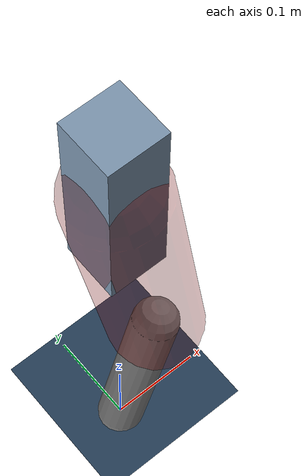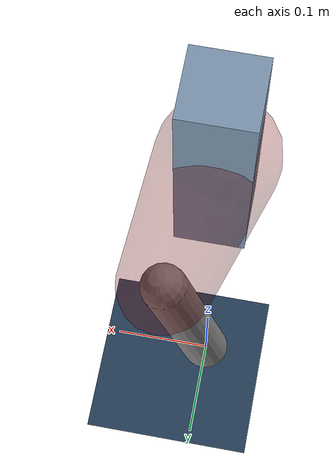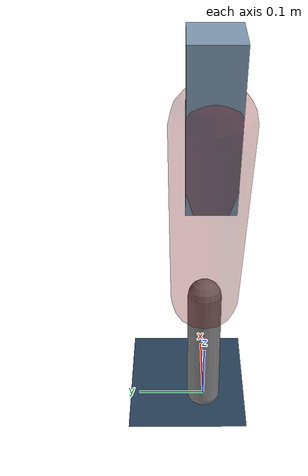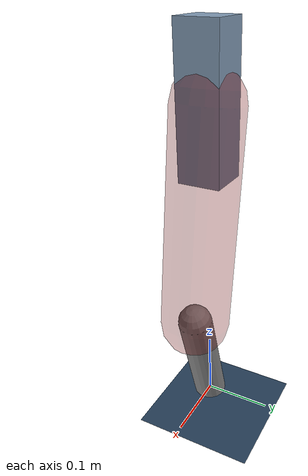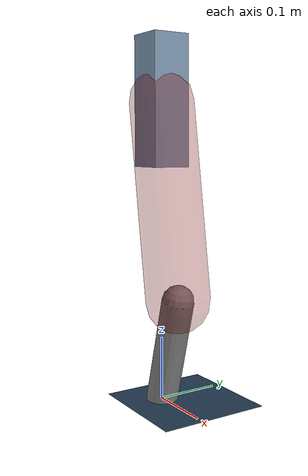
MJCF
<mujoco model="Hopper2D">
	<compiler inertiafromgeom="true" angle="radian" />
	<option timestep="0.001" integrator="implicit" cone="elliptic" solver="Newton" tolerance="1e-10" />

	<default>
		<geom contype="1" conaffinity="1" condim="3" friction="2 0.005 0.0001" solref="0.005 1" />
		<joint limited="true" damping="0.1" />
	</default>

	<asset>
		<texture name="skybox" type="skybox" builtin="gradient" rgb1=".4 .6 .8" rgb2="0 0 0" width="800" height="800" />
		<texture name="grid" type="2d" builtin="checker" rgb1=".1 .2 .3" rgb2=".2 .3 .4" width="300" height="300" mark="edge" markrgb=".2 .3 .4" />
		<material name="ground" texture="grid" texrepeat="1 1" texuniform="true" reflectance="0.1" />
		<material name="leg" rgba="0.5 0.6 0.7 1" />
	</asset>

	<worldbody>

		<geom name="floor" type="plane" size="5 5 0.25" material="ground" />

		<light directional="false" diffuse="0.8 0.8 0.8" specular="0.3 0.3 0.3" pos="0 0 2" dir="0 0 -1" />
		<light mode="targetbodycom" target="base" directional="false" diffuse="0.8 0.8 0.8" specular="0.3 0.3 0.3" pos="0 0 2" dir="0 0 -1" />

		<camera name="fixed" pos="0 -2 1" xyaxes="1 0 0 0 0 1" />
		<camera name="tracking" mode="trackcom" pos="0 -3 1" />

		<body name="root" pos="0 0 0.4733483185829618">
			<joint name="slide_x" type="slide" axis="1 0 0" range="-100 100" />
			<joint name="slide_z" type="slide" axis="0 0 1" range="0 10" />

			<body name="base" pos="0 0 0">
				<geom name="torso" type="box" size="0.03 0.03 0.1" mass="2.7190000000000003" material="leg" />

				<body name="link1" pos="0 0 0" euler="0 1.417622092525632 0">
					<joint type="hinge" axis="0 -1 0" pos="0 0 0" name="hinge1" limited="true" range="-3.14 3.14" stiffness="0" damping="0.1" />
					<geom name="thigh" type="capsule" fromto="0 0 0 0.3077762070965191 0 0" size="0.05" rgba="0.5 0 0 0.3" mass="1.0097957591606015" />

					<body name="link2" pos="0.3077762070965191 0 0" euler="0 0.4239346086664136 0">
						<joint type="hinge" axis="0 -1 0" pos="0 0 0" name="hinge2" limited="true" range="-3.14 3.14" stiffness="0" damping="0.1" />
						<geom name="shank" type="capsule" fromto="0 0 0 0.1755721114864427 0 0" size="0.025" mass="0.38011490033779843" />

					</body>
				</body>
			</body>
		</body>
	</worldbody>

	<actuator>
		<motor name="torque1" joint="hinge1" ctrlrange="-35.9691401589417 35.9691401589417" ctrllimited="true" gear="1" />
		<motor name="torque2" joint="hinge2" ctrlrange="-149.20674199342815 149.20674199342815" ctrllimited="true" gear="1" />
	</actuator>
</mujoco>
